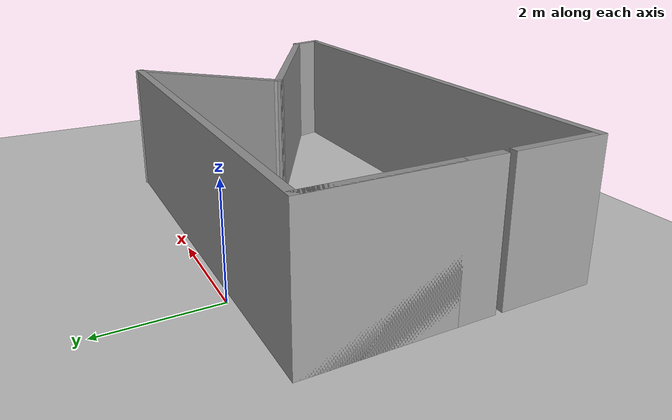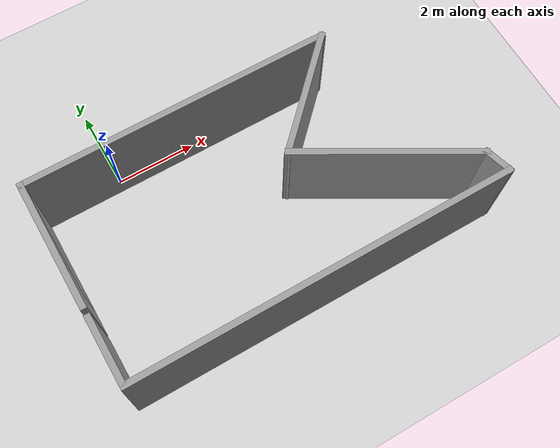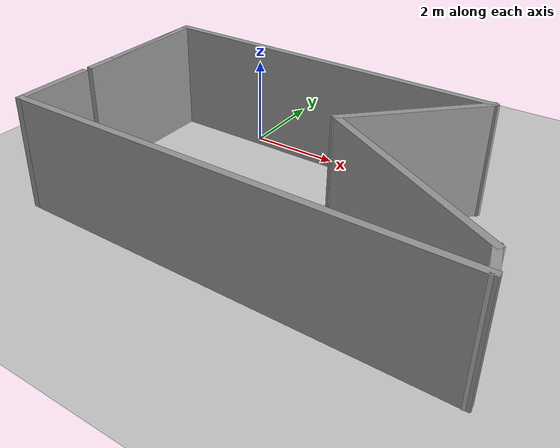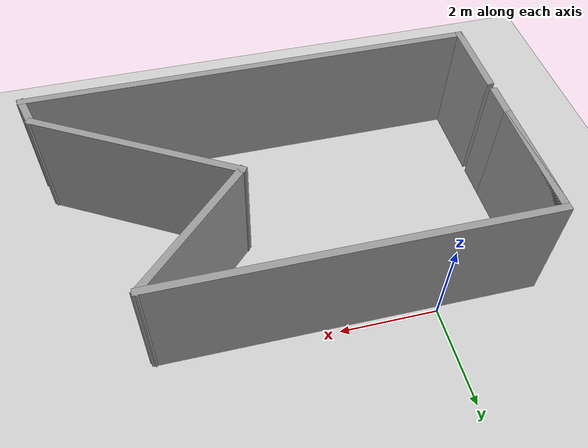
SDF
<sdf version="1.7">
 <world name="default">
  <light name="sun" type="directional">
   <pose>0 0 10 0 -0 0</pose>
   <diffuse>0.8 0.8 0.8 1</diffuse>
   <specular>0.2 0.2 0.2 1</specular>
   <attenuation>
    <range>1000</range>
    <constant>0.9</constant>
    <linear>0.01</linear>
    <quadratic>0.001</quadratic>
   </attenuation>
   <direction>-0.5 0.1 -0.9</direction>
   <spot><inner_angle>0</inner_angle><outer_angle>0</outer_angle><falloff>0</falloff></spot>
  </light>
  <model name="ground_plane">
   <static>1</static>
   <link name="link">
    <collision name="collision">
     <geometry><plane><normal>0 0 1</normal><size>100 100</size></plane></geometry>
     <surface>
      <contact><collide_bitmask>65535</collide_bitmask></contact>
      <friction><ode><mu>100</mu><mu2>50</mu2></ode></friction>
     </surface>
    </collision>
    <visual name="visual">
     <cast_shadows>0</cast_shadows>
     <geometry><plane><normal>0 0 1</normal><size>100 100</size></plane></geometry>
     <material>
      <script><uri>file://media/materials/scripts/gazebo.material</uri><name>Gazebo/Grey</name></script>
     </material>
    </visual>
   </link>
  </model>
  <gravity>0 0 -9.8</gravity>
  <magnetic_field>6e-06 2.3e-05 -4.2e-05</magnetic_field>
  <atmosphere type="adiabatic"/>
  <physics type="ode">
   <max_step_size>0.001</max_step_size>
   <real_time_factor>1</real_time_factor>
   <real_time_update_rate>1000</real_time_update_rate>
  </physics>
  <scene><ambient>0.4 0.4 0.4 1</ambient><background>0.7 0.7 0.7 1</background><shadows>1</shadows></scene>
  <audio><device>default</device></audio>
  <spherical_coordinates>
   <surface_model>EARTH_WGS84</surface_model>
   <latitude_deg>0</latitude_deg>
   <longitude_deg>0</longitude_deg>
   <elevation>0</elevation>
   <heading_deg>0</heading_deg>
  </spherical_coordinates>
  <model name="ex1">
   <pose>2.62396 -2.62146 0 0 -0 0</pose>
   <link name="Wall_0">
    <pose>-4.68396 0.891459 0 0 -0 1.5708</pose>
    <visual name="Wall_0_Visual_0">
     <pose>0 0 1.25 0 -0 0</pose>
     <geometry><box><size>3.25 0.15 2.5</size></box></geometry>
     <material>
      <script><uri>file://media/materials/scripts/gazebo.material</uri><name>Gazebo/Grey</name></script>
      <ambient>1 1 1 1</ambient>
     </material>
     <meta><layer>0</layer></meta>
    </visual>
    <collision name="Wall_0_Collision_0">
     <geometry><box><size>3.25 0.15 2.5</size></box></geometry>
     <pose>0 0 1.25 0 -0 0</pose>
    </collision>
    <visual name="Wall_0_Visual_1">
     <pose>0.3425 0 1.25 0 -0 0</pose>
     <geometry><box><size>2.565 0.15 2.5</size></box></geometry>
     <material>
      <script><uri>file://media/materials/scripts/gazebo.material</uri><name>Gazebo/Grey</name></script>
      <ambient>1 1 1 1</ambient>
     </material>
     <meta><layer>0</layer></meta>
    </visual>
    <collision name="Wall_0_Collision_1">
     <geometry><box><size>2.565 0.15 2.5</size></box></geometry>
     <pose>0.3425 0 1.25 0 -0 0</pose>
    </collision>
   </link>
   <link name="Wall_1">
    <collision name="Wall_1_Collision">
     <geometry><box><size>7.75 0.15 2.5</size></box></geometry>
     <pose>0 0 1.25 0 -0 0</pose>
    </collision>
    <visual name="Wall_1_Visual">
     <pose>0 0 1.25 0 -0 0</pose>
     <geometry><box><size>7.75 0.15 2.5</size></box></geometry>
     <material>
      <script><uri>file://media/materials/scripts/gazebo.material</uri><name>Gazebo/Grey</name></script>
      <ambient>1 1 1 1</ambient>
     </material>
     <meta><layer>0</layer></meta>
    </visual>
    <pose>-0.883959 2.44146 0 0 -0 0</pose>
   </link>
   <link name="Wall_2">
    <collision name="Wall_2_Collision">
     <geometry><box><size>3.25 0.15 2.5</size></box></geometry>
     <pose>0 0 1.25 0 -0 0</pose>
    </collision>
    <visual name="Wall_2_Visual">
     <pose>0 0 1.25 0 -0 0</pose>
     <geometry><box><size>3.25 0.15 2.5</size></box></geometry>
     <material>
      <script><uri>file://media/materials/scripts/gazebo.material</uri><name>Gazebo/Grey</name></script>
      <ambient>1 1 1 1</ambient>
     </material>
     <meta><layer>0</layer></meta>
    </visual>
    <pose>1.82003 1.34544 0 0 -0 -2.35619</pose>
   </link>
   <link name="Wall_3">
    <collision name="Wall_3_Collision">
     <geometry><box><size>4.5 0.15 2.5</size></box></geometry>
     <pose>0 0 1.25 0 -0 0</pose>
    </collision>
    <visual name="Wall_3_Visual">
     <pose>0 0 1.25 0 -0 0</pose>
     <geometry><box><size>4.5 0.15 2.5</size></box></geometry>
     <material>
      <script><uri>file://media/materials/scripts/gazebo.material</uri><name>Gazebo/Grey</name></script>
      <ambient>1 1 1 1</ambient>
     </material>
     <meta><layer>0</layer></meta>
    </visual>
    <pose>2.60762 -0.838072 0 0 -0 -0.523599</pose>
   </link>
   <link name="Wall_5">
    <collision name="Wall_5_Collision">
     <geometry><box><size>1.75 0.15 2.5</size></box></geometry>
     <pose>0 0 1.25 0 -0 0</pose>
    </collision>
    <visual name="Wall_5_Visual">
     <pose>0 0 1.25 0 -0 0</pose>
     <geometry><box><size>1.75 0.15 2.5</size></box></geometry>
     <material>
      <script><uri>file://media/materials/scripts/gazebo.material</uri><name>Gazebo/Grey</name></script>
      <ambient>1 1 1 1</ambient>
     </material>
     <meta><layer>0</layer></meta>
    </visual>
    <pose>-4.68396 -1.72854 0 0 -0 -1.5708</pose>
   </link>
   <link name="Wall_6">
    <collision name="Wall_6_Collision">
     <geometry><box><size>9.5 0.15 2.5</size></box></geometry>
     <pose>0 0 1.25 0 -0 0</pose>
    </collision>
    <visual name="Wall_6_Visual">
     <pose>0 0 1.25 0 -0 0</pose>
     <geometry><box><size>9.5 0.15 2.5</size></box></geometry>
     <material>
      <script><uri>file://media/materials/scripts/gazebo.material</uri><name>Gazebo/Grey</name></script>
      <ambient>1 1 1 1</ambient>
     </material>
     <meta><layer>0</layer></meta>
    </visual>
    <pose>-0.008959 -2.52854 0 0 -0 0</pose>
   </link>
   <link name="Wall_7">
    <collision name="Wall_7_Collision">
     <geometry><box><size>0.777801 0.15 2.5</size></box></geometry>
     <pose>0 0 1.25 0 -0 0</pose>
    </collision>
    <visual name="Wall_7_Visual">
     <pose>0 0 1.25 0 -0 0</pose>
     <geometry><box><size>0.777801 0.15 2.5</size></box></geometry>
     <material>
      <script><uri>file://media/materials/scripts/gazebo.material</uri><name>Gazebo/Grey</name></script>
      <ambient>1 1 1 1</ambient>
     </material>
     <meta><layer>0</layer></meta>
    </visual>
    <pose>4.57863 -2.22706 0 0 -0 1.85299</pose>
   </link>
   <static>1</static>
  </model>
 </world>
</sdf>
